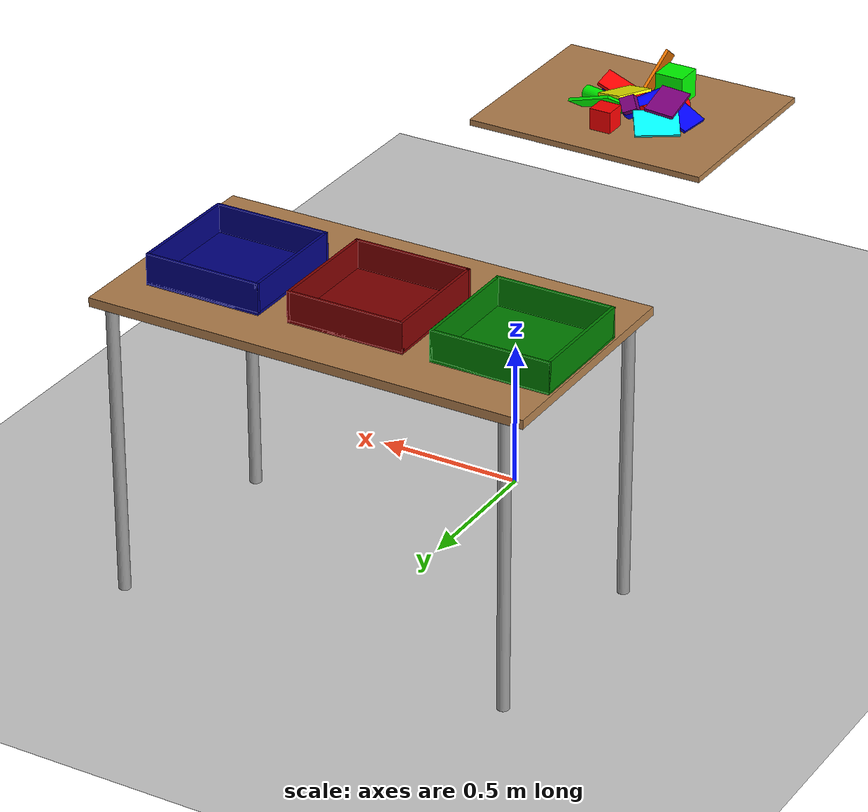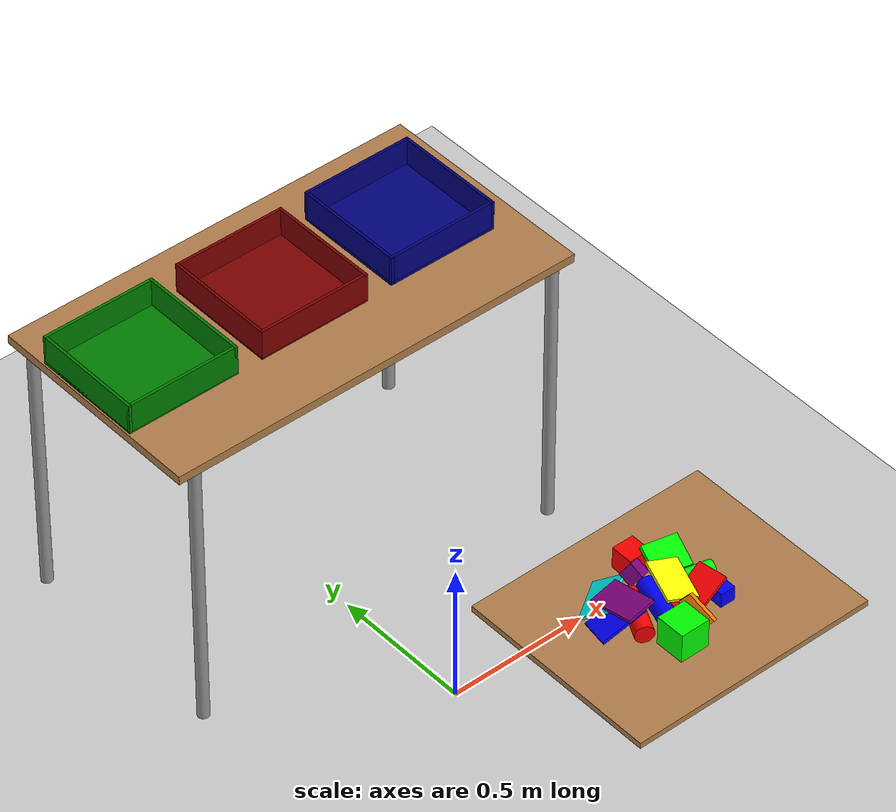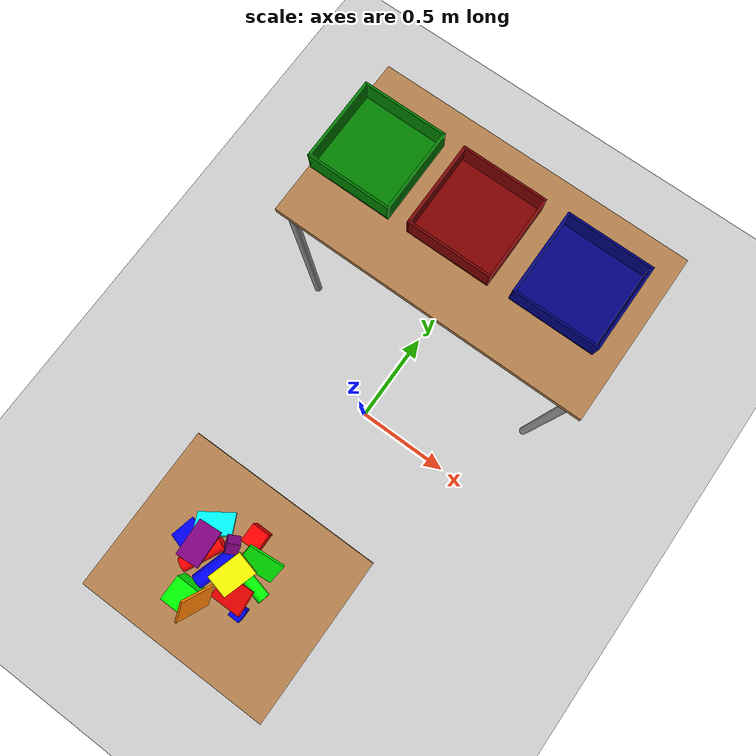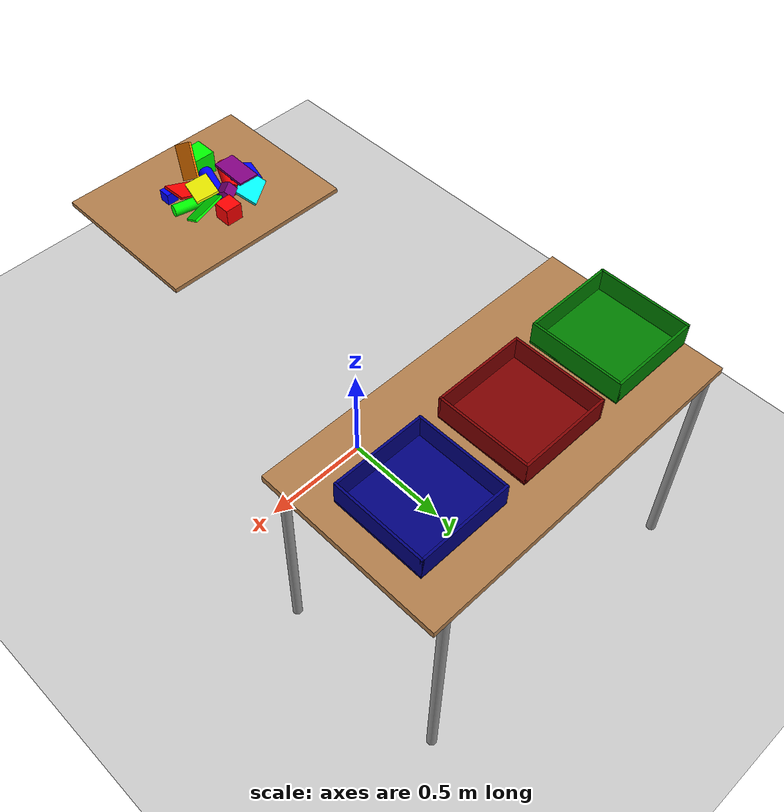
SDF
<sdf version="1.7">
 <world name="default">
  <light name="sun" type="directional">
   <pose>0 0 10 0 -0 0</pose>
   <diffuse>0.8 0.8 0.8 1</diffuse>
   <specular>0.2 0.2 0.2 1</specular>
   <attenuation>
    <range>1000</range>
    <constant>0.9</constant>
    <linear>0.01</linear>
    <quadratic>0.001</quadratic>
   </attenuation>
   <direction>-0.5 0.1 -0.9</direction>
   <spot><inner_angle>0</inner_angle><outer_angle>0</outer_angle><falloff>0</falloff></spot>
  </light>
  <model name="ground_plane">
   <static>1</static>
   <link name="link">
    <collision name="collision">
     <geometry><plane><normal>0 0 1</normal><size>100 100</size></plane></geometry>
     <surface><friction><ode><mu>100</mu><mu2>50</mu2></ode></friction></surface>
    </collision>
    <visual name="visual">
     <cast_shadows>0</cast_shadows>
     <geometry><plane><normal>0 0 1</normal><size>100 100</size></plane></geometry>
     <material>
      <script><uri>file://media/materials/scripts/gazebo.material</uri><name>Gazebo/Grey</name></script>
     </material>
    </visual>
   </link>
  </model>
  <gravity>0 0 -9.8</gravity>
  <magnetic_field>6e-06 2.3e-05 -4.2e-05</magnetic_field>
  <atmosphere type="adiabatic"/>
  <physics type="ode">
   <max_step_size>0.001</max_step_size>
   <real_time_factor>1</real_time_factor>
   <real_time_update_rate>1000</real_time_update_rate>
  </physics>
  <scene><ambient>0.4 0.4 0.4 1</ambient><background>0.7 0.7 0.7 1</background><shadows>1</shadows></scene>
  <audio><device>default</device></audio>
  <spherical_coordinates>
   <surface_model>EARTH_WGS84</surface_model>
   <latitude_deg>0</latitude_deg>
   <longitude_deg>0</longitude_deg>
   <elevation>0</elevation>
   <heading_deg>0</heading_deg>
  </spherical_coordinates>
  <model name="table">
   <static>1</static>
   <link name="link">
    <collision name="surface">
     <pose>0 0 1 0 -0 0</pose>
     <geometry><box><size>1.5 0.8 0.03</size></box></geometry>
     <surface>
      <friction><ode><mu>10</mu><mu2>5</mu2></ode></friction>
      <contact><ode><soft_cfm>0.0001</soft_cfm><soft_erp>0.4</soft_erp><kp>1e+06</kp><kd>10</kd></ode></contact>
     </surface>
    </collision>
    <visual name="visual1">
     <pose>0 0 1 0 -0 0</pose>
     <geometry><box><size>1.5 0.8 0.03</size></box></geometry>
     <material>
      <script><uri>file://media/materials/scripts/gazebo.material</uri><name>Gazebo/Wood</name></script>
     </material>
    </visual>
    <collision name="front_left_leg">
     <pose>0.68 0.38 0.5 0 -0 0</pose>
     <geometry><cylinder><radius>0.02</radius><length>1</length></cylinder></geometry>
    </collision>
    <visual name="front_left_leg">
     <pose>0.68 0.38 0.5 0 -0 0</pose>
     <geometry><cylinder><radius>0.02</radius><length>1</length></cylinder></geometry>
     <material>
      <script><uri>file://media/materials/scripts/gazebo.material</uri><name>Gazebo/Grey</name></script>
     </material>
    </visual>
    <collision name="front_right_leg">
     <pose>0.68 -0.38 0.5 0 -0 0</pose>
     <geometry><cylinder><radius>0.02</radius><length>1</length></cylinder></geometry>
    </collision>
    <visual name="front_right_leg">
     <pose>0.68 -0.38 0.5 0 -0 0</pose>
     <geometry><cylinder><radius>0.02</radius><length>1</length></cylinder></geometry>
     <material>
      <script><uri>file://media/materials/scripts/gazebo.material</uri><name>Gazebo/Grey</name></script>
     </material>
    </visual>
    <collision name="back_right_leg">
     <pose>-0.68 -0.38 0.5 0 -0 0</pose>
     <geometry><cylinder><radius>0.02</radius><length>1</length></cylinder></geometry>
    </collision>
    <visual name="back_right_leg">
     <pose>-0.68 -0.38 0.5 0 -0 0</pose>
     <geometry><cylinder><radius>0.02</radius><length>1</length></cylinder></geometry>
     <material>
      <script><uri>file://media/materials/scripts/gazebo.material</uri><name>Gazebo/Grey</name></script>
     </material>
    </visual>
    <collision name="back_left_leg">
     <pose>-0.68 0.38 0.5 0 -0 0</pose>
     <geometry><cylinder><radius>0.02</radius><length>1</length></cylinder></geometry>
    </collision>
    <visual name="back_left_leg">
     <pose>-0.68 0.38 0.5 0 -0 0</pose>
     <geometry><cylinder><radius>0.02</radius><length>1</length></cylinder></geometry>
     <material>
      <script><uri>file://media/materials/scripts/gazebo.material</uri><name>Gazebo/Grey</name></script>
     </material>
    </visual>
    <inertial>
     <inertia><ixx>1</ixx><ixy>0</ixy><ixz>0</ixz><iyy>1</iyy><iyz>0</iyz><izz>1</izz></inertia>
     <mass>50</mass>
    </inertial>
   </link>
   <pose>0.056083 0.801191 -1.2e-05 0 -0 2.5e-05</pose>
  </model>
  <plugin name="gazebo_link_attacher" filename="libgazebo_link_attacher.so"/>
  <plugin name="gazebo_ros_state" filename="libgazebo_ros_state.so">
   <namespace>/gazebo</namespace>
   <update_rate>100</update_rate>
  </plugin>
  <model name="cube_b">
   <link name="link_2">
    <inertial>
     <mass>2</mass>
     <inertia>
      <ixx>0.00083333</ixx>
      <ixy>0</ixy>
      <ixz>0</ixz>
      <iyy>0.00083333</iyy>
      <iyz>0</iyz>
      <izz>0.00083333</izz>
     </inertia>
    </inertial>
    <visual name="visual">
     <geometry><box><size>0.05 0.05 0.05</size></box></geometry>
     <material>
      <lighting>1</lighting>
      <script><uri>file://media/materials/scripts/gazebo.material</uri><name>Gazebo/Grey</name></script>
      <ambient>0 0 1 1</ambient>
      <diffuse>0 0 1 1</diffuse>
      <specular>0 0 0 1</specular>
      <emissive>0 0 0 1</emissive>
      <shader type="vertex"><normal_map>__default__</normal_map></shader>
     </material>
    </visual>
    <collision name="collision">
     <geometry><box><size>0.05 0.05 0.05</size></box></geometry>
     <surface>
      <friction>
       <ode><mu>0.8</mu><mu2>0.8</mu2><fdir1>0 0 0</fdir1><slip1>0</slip1><slip2>0</slip2></ode>
       <torsional>
        <coefficient>1</coefficient>
        <patch_radius>0</patch_radius>
        <surface_radius>0</surface_radius>
        <use_patch_radius>1</use_patch_radius>
        <ode><slip>0</slip></ode>
       </torsional>
      </friction>
      <bounce><restitution_coefficient>0</restitution_coefficient><threshold>1e+06</threshold></bounce>
      <contact>
       <collide_without_contact>0</collide_without_contact>
       <collide_without_contact_bitmask>1</collide_without_contact_bitmask>
       <collide_bitmask>1</collide_bitmask>
       <ode>
        <soft_cfm>0.0001</soft_cfm>
        <soft_erp>0.4</soft_erp>
        <kp>1e+06</kp>
        <kd>10</kd>
        <max_vel>0.01</max_vel>
        <min_depth>0</min_depth>
       </ode>
      </contact>
     </surface>
    </collision>
   </link>
   <static>0</static>
   <allow_auto_disable>0</allow_auto_disable>
   <pose>0.162821 -0.940427 1.01114 -1.56994 -0.004298 -0.017277</pose>
  </model>
  <model name="cube_g">
   <link name="link_2">
    <inertial>
     <mass>2</mass>
     <inertia>
      <ixx>0.00333333</ixx>
      <iyy>0.00333333</iyy>
      <izz>0.00333333</izz>
      <ixy>0</ixy>
      <ixz>0</ixz>
      <iyz>0</iyz>
     </inertia>
    </inertial>
    <visual name="visual">
     <geometry><box><size>0.1 0.1 0.1</size></box></geometry>
     <material>
      <lighting>1</lighting>
      <script><uri>file://media/materials/scripts/gazebo.material</uri><name>Gazebo/Grey</name></script>
      <ambient>0 1 0 1</ambient>
      <diffuse>0 1 0 1</diffuse>
      <specular>0 0 0 1</specular>
      <emissive>0 0 0 1</emissive>
      <shader type="vertex"><normal_map>__default__</normal_map></shader>
     </material>
    </visual>
    <collision name="collision">
     <geometry><box><size>0.1 0.1 0.1</size></box></geometry>
     <surface>
      <friction>
       <ode><mu>0.8</mu><mu2>0.8</mu2><fdir1>0 0 0</fdir1><slip1>0</slip1><slip2>0</slip2></ode>
       <torsional>
        <coefficient>1</coefficient>
        <patch_radius>0</patch_radius>
        <surface_radius>0</surface_radius>
        <use_patch_radius>1</use_patch_radius>
        <ode><slip>0</slip></ode>
       </torsional>
      </friction>
      <bounce><restitution_coefficient>0</restitution_coefficient><threshold>1e+06</threshold></bounce>
      <contact>
       <collide_without_contact>0</collide_without_contact>
       <collide_without_contact_bitmask>1</collide_without_contact_bitmask>
       <collide_bitmask>1</collide_bitmask>
       <ode>
        <soft_cfm>0.0001</soft_cfm>
        <soft_erp>0.4</soft_erp>
        <kp>1e+06</kp>
        <kd>10</kd>
        <max_vel>0.01</max_vel>
        <min_depth>0</min_depth>
       </ode>
      </contact>
     </surface>
    </collision>
   </link>
   <static>0</static>
   <allow_auto_disable>0</allow_auto_disable>
   <pose>-0.041064 -1.00225 1.03524 0.001158 -0.004161 -0.002031</pose>
  </model>
  <model name="cube_r">
   <link name="link_2">
    <inertial>
     <mass>2</mass>
     <inertia>
      <ixx>0.001875</ixx>
      <ixy>0</ixy>
      <ixz>0</ixz>
      <iyy>0.001875</iyy>
      <iyz>0</iyz>
      <izz>0.001875</izz>
     </inertia>
    </inertial>
    <visual name="visual">
     <geometry><box><size>0.075 0.075 0.075</size></box></geometry>
     <material>
      <lighting>1</lighting>
      <script><uri>file://media/materials/scripts/gazebo.material</uri><name>Gazebo/Grey</name></script>
      <ambient>1 0 0 1</ambient>
      <diffuse>1 0 0 1</diffuse>
      <specular>0 0 0 1</specular>
      <emissive>0 0 0 1</emissive>
      <shader type="vertex"><normal_map>__default__</normal_map></shader>
     </material>
    </visual>
    <collision name="collision">
     <geometry><box><size>0.075 0.075 0.075</size></box></geometry>
     <surface>
      <friction>
       <ode><mu>0.8</mu><mu2>0.8</mu2><fdir1>0 0 0</fdir1><slip1>0</slip1><slip2>0</slip2></ode>
       <torsional>
        <coefficient>1</coefficient>
        <patch_radius>0</patch_radius>
        <surface_radius>0</surface_radius>
        <use_patch_radius>1</use_patch_radius>
        <ode><slip>0</slip></ode>
       </torsional>
      </friction>
      <bounce><restitution_coefficient>0</restitution_coefficient><threshold>1e+06</threshold></bounce>
      <contact>
       <collide_without_contact>0</collide_without_contact>
       <collide_without_contact_bitmask>1</collide_without_contact_bitmask>
       <collide_bitmask>1</collide_bitmask>
       <ode>
        <soft_cfm>0.0001</soft_cfm>
        <soft_erp>0.4</soft_erp>
        <kp>1e+06</kp>
        <kd>10</kd>
        <max_vel>0.01</max_vel>
        <min_depth>0</min_depth>
       </ode>
      </contact>
     </surface>
    </collision>
   </link>
   <static>0</static>
   <allow_auto_disable>0</allow_auto_disable>
   <pose>0.05349 -0.684874 1.02348 1.56688 -0.001202 1.56636</pose>
  </model>
  <model name="cylinder_r">
   <link name="link_0">
    <inertial>
     <mass>0.2</mass>
     <inertia>
      <ixx>0.0005267</ixx>
      <ixy>0</ixy>
      <ixz>0</ixz>
      <iyy>0.0005267</iyy>
      <iyz>0</iyz>
      <izz>9e-05</izz>
     </inertia>
    </inertial>
    <visual name="visual">
     <geometry><cylinder><radius>0.03</radius><length>0.17</length></cylinder></geometry>
     <material>
      <lighting>1</lighting>
      <script><uri>file://media/materials/scripts/gazebo.material</uri><name>Gazebo/Grey</name></script>
      <ambient>1 0 0 1</ambient>
      <diffuse>1 0 0 1</diffuse>
      <specular>0 0 0 1</specular>
      <emissive>0 0 0 1</emissive>
      <shader type="vertex"><normal_map>__default__</normal_map></shader>
     </material>
    </visual>
    <collision name="collision">
     <geometry><cylinder><radius>0.03</radius><length>0.17</length></cylinder></geometry>
     <surface>
      <friction>
       <ode><mu>0.5</mu><mu2>0.5</mu2><fdir1>0 0 0</fdir1><slip1>0</slip1><slip2>0</slip2></ode>
       <torsional>
        <coefficient>1</coefficient>
        <patch_radius>0</patch_radius>
        <surface_radius>0</surface_radius>
        <use_patch_radius>1</use_patch_radius>
        <ode><slip>0</slip></ode>
       </torsional>
      </friction>
      <bounce><restitution_coefficient>0</restitution_coefficient><threshold>1e+06</threshold></bounce>
      <contact>
       <collide_without_contact>0</collide_without_contact>
       <collide_without_contact_bitmask>1</collide_without_contact_bitmask>
       <collide_bitmask>1</collide_bitmask>
       <ode>
        <soft_cfm>0.0001</soft_cfm>
        <soft_erp>0.4</soft_erp>
        <kp>1e+06</kp>
        <kd>10</kd>
        <max_vel>0.01</max_vel>
        <min_depth>0</min_depth>
       </ode>
      </contact>
     </surface>
    </collision>
   </link>
   <static>0</static>
   <allow_auto_disable>0</allow_auto_disable>
   <pose>-0.077898 -0.852741 1.01517 -1.57387 0.526248 2.6795</pose>
  </model>
  <model name="cylinder_b">
   <link name="link_0">
    <inertial>
     <mass>0.2</mass>
     <inertia>
      <ixx>0.0005267</ixx>
      <ixy>0</ixy>
      <ixz>0</ixz>
      <iyy>0.0005267</iyy>
      <iyz>0</iyz>
      <izz>9e-05</izz>
     </inertia>
    </inertial>
    <visual name="visual">
     <geometry><cylinder><radius>0.03</radius><length>0.17</length></cylinder></geometry>
     <material>
      <lighting>1</lighting>
      <ambient>0 0 1 1</ambient>
      <diffuse>0 0 1 1</diffuse>
      <specular>0.1 0.1 0.1 1</specular>
      <emissive>0 0 0 1</emissive>
      <shader type="vertex"><normal_map>__default__</normal_map></shader>
     </material>
    </visual>
    <collision name="collision">
     <geometry><cylinder><radius>0.03</radius><length>0.17</length></cylinder></geometry>
     <surface>
      <friction>
       <ode><mu>0.4</mu><mu2>0.4</mu2><fdir1>0 0 0</fdir1><slip1>0</slip1><slip2>0</slip2></ode>
       <torsional>
        <coefficient>1</coefficient>
        <patch_radius>0</patch_radius>
        <surface_radius>0</surface_radius>
        <use_patch_radius>1</use_patch_radius>
        <ode><slip>0</slip></ode>
       </torsional>
      </friction>
      <bounce><restitution_coefficient>0</restitution_coefficient><threshold>1e+06</threshold></bounce>
      <contact>
       <collide_without_contact>0</collide_without_contact>
       <collide_without_contact_bitmask>1</collide_without_contact_bitmask>
       <collide_bitmask>1</collide_bitmask>
       <ode>
        <soft_cfm>0.0001</soft_cfm>
        <soft_erp>0.4</soft_erp>
        <kp>1e+06</kp>
        <kd>10</kd>
        <max_vel>0.01</max_vel>
        <min_depth>0</min_depth>
       </ode>
      </contact>
     </surface>
    </collision>
   </link>
   <static>0</static>
   <allow_auto_disable>0</allow_auto_disable>
   <pose>-0.004701 -0.862227 1.01554 -1.57426 -0.880737 2.83783</pose>
  </model>
  <model name="cylinder_g">
   <link name="link_0">
    <inertial>
     <mass>0.2</mass>
     <inertia>
      <ixx>0.0005129</ixx>
      <ixy>0</ixy>
      <ixz>0</ixz>
      <iyy>0.0005129</iyy>
      <iyz>0</iyz>
      <izz>6.25e-05</izz>
     </inertia>
    </inertial>
    <visual name="visual">
     <geometry><cylinder><radius>0.025</radius><length>0.17</length></cylinder></geometry>
     <material>
      <lighting>1</lighting>
      <ambient>0 1 0 1</ambient>
      <diffuse>0 1 0 1</diffuse>
      <specular>0.1 0.1 0.1 1</specular>
      <emissive>0 0 0 1</emissive>
      <shader type="vertex"><normal_map>__default__</normal_map></shader>
     </material>
    </visual>
    <collision name="collision">
     <geometry><cylinder><radius>0.025</radius><length>0.17</length></cylinder></geometry>
     <surface>
      <friction>
       <ode><mu>0.5</mu><mu2>0.5</mu2><fdir1>0 0 0</fdir1><slip1>0</slip1><slip2>0</slip2></ode>
       <torsional>
        <coefficient>1</coefficient>
        <patch_radius>0</patch_radius>
        <surface_radius>0</surface_radius>
        <use_patch_radius>1</use_patch_radius>
        <ode><slip>0</slip></ode>
       </torsional>
      </friction>
      <bounce><restitution_coefficient>0</restitution_coefficient><threshold>1e+06</threshold></bounce>
      <contact>
       <collide_without_contact>0</collide_without_contact>
       <collide_without_contact_bitmask>1</collide_without_contact_bitmask>
       <collide_bitmask>1</collide_bitmask>
       <ode>
        <soft_cfm>0.0001</soft_cfm>
        <soft_erp>0.4</soft_erp>
        <kp>1e+06</kp>
        <kd>10</kd>
        <max_vel>0.01</max_vel>
        <min_depth>0</min_depth>
       </ode>
      </contact>
     </surface>
    </collision>
   </link>
   <static>0</static>
   <allow_auto_disable>0</allow_auto_disable>
   <pose>0.12767 -0.830181 1.01113 -1.49637 -1.51974 -1.8676</pose>
  </model>
  <model name="cuboid_r">
   <link name="link">
    <inertial>
     <mass>2</mass>
     <inertia>
      <ixx>0.001683</ixx>
      <iyy>0.003767</iyy>
      <izz>0.005417</izz>
      <ixy>0</ixy>
      <ixz>0</ixz>
      <iyz>0</iyz>
     </inertia>
    </inertial>
    <visual name="visual">
     <geometry><box><size>0.15 0.1 0.01</size></box></geometry>
     <material><ambient>1 0 0 1</ambient><diffuse>1 0 0 1</diffuse><specular>0.1 0.1 0.1 1</specular></material>
    </visual>
    <collision name="collision">
     <geometry><box><size>0.15 0.1 0.01</size></box></geometry>
     <surface>
      <friction>
       <ode><mu>0.6</mu><mu2>0.6</mu2><fdir1>0 0 0</fdir1><slip1>0</slip1><slip2>0</slip2></ode>
       <torsional>
        <coefficient>1</coefficient>
        <patch_radius>0</patch_radius>
        <surface_radius>0</surface_radius>
        <use_patch_radius>1</use_patch_radius>
        <ode><slip>0</slip></ode>
       </torsional>
      </friction>
      <bounce><restitution_coefficient>0</restitution_coefficient><threshold>1e+06</threshold></bounce>
      <contact>
       <collide_without_contact>0</collide_without_contact>
       <collide_without_contact_bitmask>1</collide_without_contact_bitmask>
       <collide_bitmask>1</collide_bitmask>
       <ode>
        <soft_cfm>0.0001</soft_cfm>
        <soft_erp>0.4</soft_erp>
        <kp>1e+06</kp>
        <kd>10</kd>
        <max_vel>0.01</max_vel>
        <min_depth>0</min_depth>
       </ode>
      </contact>
     </surface>
    </collision>
   </link>
   <static>0</static>
   <allow_auto_disable>0</allow_auto_disable>
   <pose>0.105136 -0.900726 1.02544 0.069121 0.442315 -3.01892</pose>
  </model>
  <model name="cuboid_g">
   <link name="link">
    <inertial>
     <mass>2</mass>
     <inertia>
      <ixx>0.001683</ixx>
      <iyy>0.003767</iyy>
      <izz>0.005417</izz>
      <ixy>0</ixy>
      <ixz>0</ixz>
      <iyz>0</iyz>
     </inertia>
    </inertial>
    <visual name="visual">
     <geometry><box><size>0.15 0.1 0.01</size></box></geometry>
     <material><ambient>0 1 0 1</ambient><diffuse>0 1 0 1</diffuse><specular>0.1 0.1 0.1 1</specular></material>
    </visual>
    <collision name="collision">
     <geometry><box><size>0.15 0.1 0.01</size></box></geometry>
     <surface>
      <friction>
       <ode><mu>0.6</mu><mu2>0.6</mu2><fdir1>0 0 0</fdir1><slip1>0</slip1><slip2>0</slip2></ode>
       <torsional>
        <coefficient>1</coefficient>
        <patch_radius>0</patch_radius>
        <surface_radius>0</surface_radius>
        <use_patch_radius>1</use_patch_radius>
        <ode><slip>0</slip></ode>
       </torsional>
      </friction>
      <bounce><restitution_coefficient>0</restitution_coefficient><threshold>1e+06</threshold></bounce>
      <contact>
       <collide_without_contact>0</collide_without_contact>
       <collide_without_contact_bitmask>1</collide_without_contact_bitmask>
       <collide_bitmask>1</collide_bitmask>
       <ode>
        <soft_cfm>0.0001</soft_cfm>
        <soft_erp>0.4</soft_erp>
        <kp>1e+06</kp>
        <kd>10</kd>
        <max_vel>0.01</max_vel>
        <min_depth>0</min_depth>
       </ode>
      </contact>
     </surface>
    </collision>
   </link>
   <static>0</static>
   <allow_auto_disable>0</allow_auto_disable>
   <pose>0.125244 -0.750354 1.03758 -0.585599 -0.277705 -3.09777</pose>
  </model>
  <model name="cuboid_b">
   <link name="link">
    <inertial>
     <mass>2</mass>
     <inertia>
      <ixx>0.001683</ixx>
      <iyy>0.003767</iyy>
      <izz>0.005417</izz>
      <ixy>0</ixy>
      <ixz>0</ixz>
      <iyz>0</iyz>
     </inertia>
    </inertial>
    <visual name="visual">
     <geometry><box><size>0.15 0.1 0.01</size></box></geometry>
     <material><ambient>0 0 1 1</ambient><diffuse>0 0 1 1</diffuse><specular>0.1 0.1 0.1 1</specular></material>
    </visual>
    <collision name="collision">
     <geometry><box><size>0.15 0.1 0.01</size></box></geometry>
     <surface>
      <friction>
       <ode><mu>0.6</mu><mu2>0.6</mu2><fdir1>0 0 0</fdir1><slip1>0</slip1><slip2>0</slip2></ode>
       <torsional>
        <coefficient>1</coefficient>
        <patch_radius>0</patch_radius>
        <surface_radius>0</surface_radius>
        <use_patch_radius>1</use_patch_radius>
        <ode><slip>0</slip></ode>
       </torsional>
      </friction>
      <bounce><restitution_coefficient>0</restitution_coefficient><threshold>1e+06</threshold></bounce>
      <contact>
       <collide_without_contact>0</collide_without_contact>
       <collide_without_contact_bitmask>1</collide_without_contact_bitmask>
       <collide_bitmask>1</collide_bitmask>
       <ode>
        <soft_cfm>0.0001</soft_cfm>
        <soft_erp>0.4</soft_erp>
        <kp>1e+06</kp>
        <kd>10</kd>
        <max_vel>0.01</max_vel>
        <min_depth>0</min_depth>
       </ode>
      </contact>
     </surface>
    </collision>
   </link>
   <static>0</static>
   <allow_auto_disable>0</allow_auto_disable>
   <pose>-0.138036 -0.833348 1.025 0.119452 0.413932 2.97093</pose>
  </model>
  <model name="cuboid_purple">
   <link name="link">
    <inertial>
     <mass>2</mass>
     <inertia>
      <ixx>0.001683</ixx>
      <iyy>0.003767</iyy>
      <izz>0.005417</izz>
      <ixy>0</ixy>
      <ixz>0</ixz>
      <iyz>0</iyz>
     </inertia>
    </inertial>
    <visual name="visual">
     <geometry><box><size>0.15 0.1 0.01</size></box></geometry>
     <material>
      <ambient>0.5 0 0.5 1</ambient>
      <diffuse>0.5 0 0.5 1</diffuse>
      <specular>0.1 0.1 0.1 1</specular>
     </material>
    </visual>
    <collision name="collision">
     <geometry><box><size>0.15 0.1 0.01</size></box></geometry>
     <surface>
      <friction>
       <ode><mu>0.6</mu><mu2>0.6</mu2><fdir1>0 0 0</fdir1><slip1>0</slip1><slip2>0</slip2></ode>
       <torsional>
        <coefficient>1</coefficient>
        <patch_radius>0</patch_radius>
        <surface_radius>0</surface_radius>
        <use_patch_radius>1</use_patch_radius>
        <ode><slip>0</slip></ode>
       </torsional>
      </friction>
      <bounce><restitution_coefficient>0</restitution_coefficient><threshold>1e+06</threshold></bounce>
      <contact>
       <collide_without_contact>0</collide_without_contact>
       <collide_without_contact_bitmask>1</collide_without_contact_bitmask>
       <collide_bitmask>1</collide_bitmask>
       <ode>
        <soft_cfm>0.0001</soft_cfm>
        <soft_erp>0.4</soft_erp>
        <kp>1e+06</kp>
        <kd>10</kd>
        <max_vel>0.01</max_vel>
        <min_depth>0</min_depth>
       </ode>
      </contact>
     </surface>
    </collision>
   </link>
   <static>0</static>
   <allow_auto_disable>0</allow_auto_disable>
   <pose>-0.103799 -0.822705 1.05761 -0.118132 0.149379 1.64207</pose>
  </model>
  <model name="cuboid_orange">
   <link name="link">
    <inertial>
     <mass>2</mass>
     <inertia>
      <ixx>0.001683</ixx>
      <iyy>0.003767</iyy>
      <izz>0.005417</izz>
      <ixy>0</ixy>
      <ixz>0</ixz>
      <iyz>0</iyz>
     </inertia>
    </inertial>
    <visual name="visual">
     <geometry><box><size>0.15 0.1 0.01</size></box></geometry>
     <material>
      <ambient>1 0.5 0 1</ambient>
      <diffuse>1 0.5 0 1</diffuse>
      <specular>0.1 0.1 0.1 1</specular>
     </material>
    </visual>
    <collision name="collision">
     <geometry><box><size>0.15 0.1 0.01</size></box></geometry>
     <surface>
      <friction>
       <ode><mu>0.6</mu><mu2>0.6</mu2><fdir1>0 0 0</fdir1><slip1>0</slip1><slip2>0</slip2></ode>
       <torsional>
        <coefficient>1</coefficient>
        <patch_radius>0</patch_radius>
        <surface_radius>0</surface_radius>
        <use_patch_radius>1</use_patch_radius>
        <ode><slip>0</slip></ode>
       </torsional>
      </friction>
      <bounce><restitution_coefficient>0</restitution_coefficient><threshold>1e+06</threshold></bounce>
      <contact>
       <collide_without_contact>0</collide_without_contact>
       <collide_without_contact_bitmask>1</collide_without_contact_bitmask>
       <collide_bitmask>1</collide_bitmask>
       <ode>
        <soft_cfm>0.0001</soft_cfm>
        <soft_erp>0.4</soft_erp>
        <kp>1e+06</kp>
        <kd>10</kd>
        <max_vel>0.01</max_vel>
        <min_depth>0</min_depth>
       </ode>
      </contact>
     </surface>
    </collision>
   </link>
   <static>0</static>
   <allow_auto_disable>0</allow_auto_disable>
   <pose>0.018504 -0.994597 1.07242 -2.11229 0.888247 1.13172</pose>
  </model>
  <model name="cuboid_yellow">
   <link name="link">
    <inertial>
     <mass>2</mass>
     <inertia>
      <ixx>0.001683</ixx>
      <iyy>0.003767</iyy>
      <izz>0.005417</izz>
      <ixy>0</ixy>
      <ixz>0</ixz>
      <iyz>0</iyz>
     </inertia>
    </inertial>
    <visual name="visual">
     <geometry><box><size>0.15 0.1 0.01</size></box></geometry>
     <material><ambient>1 1 0 1</ambient><diffuse>1 1 0 1</diffuse><specular>0.1 0.1 0.1 1</specular></material>
    </visual>
    <collision name="collision">
     <geometry><box><size>0.15 0.1 0.01</size></box></geometry>
     <surface>
      <friction>
       <ode><mu>0.6</mu><mu2>0.6</mu2><fdir1>0 0 0</fdir1><slip1>0</slip1><slip2>0</slip2></ode>
       <torsional>
        <coefficient>1</coefficient>
        <patch_radius>0</patch_radius>
        <surface_radius>0</surface_radius>
        <use_patch_radius>1</use_patch_radius>
        <ode><slip>0</slip></ode>
       </torsional>
      </friction>
      <bounce><restitution_coefficient>0</restitution_coefficient><threshold>1e+06</threshold></bounce>
      <contact>
       <collide_without_contact>0</collide_without_contact>
       <collide_without_contact_bitmask>1</collide_without_contact_bitmask>
       <collide_bitmask>1</collide_bitmask>
       <ode>
        <soft_cfm>0.0001</soft_cfm>
        <soft_erp>0.4</soft_erp>
        <kp>1e+06</kp>
        <kd>10</kd>
        <max_vel>0.01</max_vel>
        <min_depth>0</min_depth>
       </ode>
      </contact>
     </surface>
    </collision>
   </link>
   <static>0</static>
   <allow_auto_disable>0</allow_auto_disable>
   <pose>0.064848 -0.841309 1.04797 -2.93539 -0.12722 1.26332</pose>
  </model>
  <model name="cuboid_cyan">
   <link name="link">
    <inertial>
     <mass>2</mass>
     <inertia>
      <ixx>0.001683</ixx>
      <iyy>0.003767</iyy>
      <izz>0.005417</izz>
      <ixy>0</ixy>
      <ixz>0</ixz>
      <iyz>0</iyz>
     </inertia>
    </inertial>
    <visual name="visual">
     <geometry><box><size>0.15 0.1 0.01</size></box></geometry>
     <material><ambient>0 1 1 1</ambient><diffuse>0 1 1 1</diffuse><specular>0.1 0.1 0.1 1</specular></material>
    </visual>
    <collision name="collision">
     <geometry><box><size>0.15 0.1 0.01</size></box></geometry>
     <surface>
      <friction>
       <ode><mu>0.6</mu><mu2>0.6</mu2><fdir1>0 0 0</fdir1><slip1>0</slip1><slip2>0</slip2></ode>
       <torsional>
        <coefficient>1</coefficient>
        <patch_radius>0</patch_radius>
        <surface_radius>0</surface_radius>
        <use_patch_radius>1</use_patch_radius>
        <ode><slip>0</slip></ode>
       </torsional>
      </friction>
      <bounce><restitution_coefficient>0</restitution_coefficient><threshold>1e+06</threshold></bounce>
      <contact>
       <collide_without_contact>0</collide_without_contact>
       <collide_without_contact_bitmask>1</collide_without_contact_bitmask>
       <collide_bitmask>1</collide_bitmask>
       <ode>
        <soft_cfm>0.0001</soft_cfm>
        <soft_erp>0.4</soft_erp>
        <kp>1e+06</kp>
        <kd>10</kd>
        <max_vel>0.01</max_vel>
        <min_depth>0</min_depth>
       </ode>
      </contact>
     </surface>
    </collision>
   </link>
   <static>0</static>
   <allow_auto_disable>0</allow_auto_disable>
   <pose>-0.107414 -0.740894 1.01564 2.59015 -0.003854 0.582895</pose>
  </model>
  <model name="workspace">
   <link name="link">
    <inertial>
     <mass>100</mass>
     <inertia><ixx>6.02417</ixx><ixy>0</ixy><ixz>0</ixz><iyy>4.08667</iyy><iyz>0</iyz><izz>10.1042</izz></inertia>
    </inertial>
    <visual name="visual">
     <geometry><box><size>0.7 0.85 0.02</size></box></geometry>
     <material>
      <script><name>Gazebo/Wood</name><uri>file://media/materials/scripts/gazebo.material</uri></script>
      <shader type="pixel"/>
     </material>
    </visual>
    <collision name="collision">
     <geometry><box><size>0.7 0.85 0.02</size></box></geometry>
     <surface>
      <friction>
       <ode><mu>100</mu><mu2>50</mu2><fdir1>0 0 0</fdir1><slip1>0</slip1><slip2>0</slip2></ode>
       <torsional>
        <coefficient>1</coefficient>
        <patch_radius>0</patch_radius>
        <surface_radius>0</surface_radius>
        <use_patch_radius>1</use_patch_radius>
        <ode><slip>0</slip></ode>
       </torsional>
      </friction>
      <bounce><restitution_coefficient>0</restitution_coefficient><threshold>1e+06</threshold></bounce>
      <contact>
       <collide_without_contact>0</collide_without_contact>
       <collide_without_contact_bitmask>1</collide_without_contact_bitmask>
       <collide_bitmask>1</collide_bitmask>
       <ode>
        <soft_cfm>0.0001</soft_cfm>
        <soft_erp>0.2</soft_erp>
        <kp>1e+13</kp>
        <kd>10</kd>
        <max_vel>0.01</max_vel>
        <min_depth>0</min_depth>
       </ode>
       <bullet>
        <split_impulse>1</split_impulse>
        <split_impulse_penetration_threshold>-0.01</split_impulse_penetration_threshold>
        <soft_cfm>0</soft_cfm>
        <soft_erp>0.2</soft_erp>
        <kp>1e+13</kp>
        <kd>1</kd>
       </bullet>
      </contact>
     </surface>
    </collision>
   </link>
   <static>1</static>
   <pose>0.0416 -0.859914 0.975746 -0.004154 -0.001127 1.57039</pose>
  </model>
  <model name="tray_red">
   <static>1</static>
   <link name="link">
    <collision name="base_collision">
     <pose>0 0 0.01 0 -0 0</pose>
     <geometry><box><size>0.4 0.4 0.01</size></box></geometry>
     <surface><contact><ode><mu>50</mu><mu2>50</mu2></ode></contact></surface>
    </collision>
    <visual name="base_visual">
     <pose>0 0 0.01 0 -0 0</pose>
     <geometry><box><size>0.4 0.4 0.01</size></box></geometry>
     <material>
      <ambient>1 0 0 1</ambient>
      <diffuse>0.5 0 0 1</diffuse>
      <specular>0 0 0 1</specular>
      <emissive>0 0 0 1</emissive>
      <shininess>100</shininess>
     </material>
    </visual>
    <collision name="front_collision">
     <pose>0 0.195 0.06 0 -0 0</pose>
     <geometry><box><size>0.4 0.01 0.1</size></box></geometry>
    </collision>
    <visual name="front_visual">
     <pose>0 0.195 0.06 0 -0 0</pose>
     <geometry><box><size>0.4 0.01 0.1</size></box></geometry>
     <material>
      <ambient>1 0 0 1</ambient>
      <diffuse>0.5 0 0 1</diffuse>
      <specular>0 0 0 1</specular>
      <emissive>0 0 0 1</emissive>
     </material>
    </visual>
    <collision name="back_collision">
     <pose>0 -0.195 0.06 0 -0 0</pose>
     <geometry><box><size>0.4 0.01 0.1</size></box></geometry>
    </collision>
    <visual name="back_visual">
     <pose>0 -0.195 0.06 0 -0 0</pose>
     <geometry><box><size>0.4 0.01 0.1</size></box></geometry>
     <material>
      <ambient>1 0 0 1</ambient>
      <diffuse>0.5 0 0 1</diffuse>
      <specular>0 0 0 1</specular>
      <emissive>0 0 0 1</emissive>
     </material>
    </visual>
    <collision name="left_collision">
     <pose>0.195 0 0.06 0 -0 0</pose>
     <geometry><box><size>0.01 0.4 0.1</size></box></geometry>
    </collision>
    <visual name="left_visual">
     <pose>0.195 0 0.06 0 -0 0</pose>
     <geometry><box><size>0.01 0.4 0.1</size></box></geometry>
     <material>
      <ambient>1 0 0 1</ambient>
      <diffuse>0.5 0 0 1</diffuse>
      <specular>0 0 0 1</specular>
      <emissive>0 0 0 1</emissive>
     </material>
    </visual>
    <collision name="right_collision">
     <pose>-0.195 0 0.06 0 -0 0</pose>
     <geometry><box><size>0.01 0.4 0.1</size></box></geometry>
    </collision>
    <visual name="right_visual">
     <pose>-0.195 0 0.06 0 -0 0</pose>
     <geometry><box><size>0.01 0.4 0.1</size></box></geometry>
     <material>
      <ambient>1 0 0 1</ambient>
      <diffuse>0.5 0 0 1</diffuse>
      <specular>0 0 0 1</specular>
      <emissive>0 0 0 1</emissive>
     </material>
    </visual>
    <inertial>
     <inertia><ixx>1</ixx><ixy>0</ixy><ixz>0</ixz><iyy>1</iyy><iyz>0</iyz><izz>1</izz></inertia>
     <mass>1</mass>
    </inertial>
   </link>
   <pose>0.003367 0.836815 1.00999 0 -0 0</pose>
  </model>
  <model name="tray_green">
   <static>1</static>
   <link name="link">
    <collision name="base_collision">
     <pose>0 0 0.01 0 -0 0</pose>
     <geometry><box><size>0.4 0.4 0.01</size></box></geometry>
     <surface><contact><ode><mu>50</mu><mu2>50</mu2></ode></contact></surface>
    </collision>
    <visual name="base_visual">
     <pose>0 0 0.01 0 -0 0</pose>
     <geometry><box><size>0.4 0.4 0.01</size></box></geometry>
     <material><ambient>0 1 0 1</ambient><diffuse>0 0.5 0 1</diffuse></material>
    </visual>
    <collision name="front_collision">
     <pose>0 0.195 0.06 0 -0 0</pose>
     <geometry><box><size>0.4 0.01 0.1</size></box></geometry>
    </collision>
    <visual name="front_visual">
     <pose>0 0.195 0.06 0 -0 0</pose>
     <geometry><box><size>0.4 0.01 0.1</size></box></geometry>
     <material><ambient>0 1 0 1</ambient><diffuse>0 0.5 0 1</diffuse></material>
    </visual>
    <collision name="back_collision">
     <pose>0 -0.195 0.06 0 -0 0</pose>
     <geometry><box><size>0.4 0.01 0.1</size></box></geometry>
    </collision>
    <visual name="back_visual">
     <pose>0 -0.195 0.06 0 -0 0</pose>
     <geometry><box><size>0.4 0.01 0.1</size></box></geometry>
     <material><ambient>0 1 0 1</ambient><diffuse>0 0.5 0 1</diffuse></material>
    </visual>
    <collision name="left_collision">
     <pose>0.195 0 0.06 0 -0 0</pose>
     <geometry><box><size>0.01 0.4 0.1</size></box></geometry>
    </collision>
    <visual name="left_visual">
     <pose>0.195 0 0.06 0 -0 0</pose>
     <geometry><box><size>0.01 0.4 0.1</size></box></geometry>
     <material><ambient>0 1 0 1</ambient><diffuse>0 0.5 0 1</diffuse></material>
    </visual>
    <collision name="right_collision">
     <pose>-0.195 0 0.06 0 -0 0</pose>
     <geometry><box><size>0.01 0.4 0.1</size></box></geometry>
    </collision>
    <visual name="right_visual">
     <pose>-0.195 0 0.06 0 -0 0</pose>
     <geometry><box><size>0.01 0.4 0.1</size></box></geometry>
     <material><ambient>0 1 0 1</ambient><diffuse>0 0.5 0 1</diffuse></material>
    </visual>
    <inertial>
     <inertia><ixx>1</ixx><ixy>0</ixy><ixz>0</ixz><iyy>1</iyy><iyz>0</iyz><izz>1</izz></inertia>
     <mass>1</mass>
    </inertial>
   </link>
   <pose>-0.487214 0.834657 1.00999 0 -0 0</pose>
  </model>
  <model name="tray_blue">
   <static>1</static>
   <link name="link">
    <collision name="base_collision">
     <pose>0 0 0.01 0 -0 0</pose>
     <geometry><box><size>0.4 0.4 0.01</size></box></geometry>
     <surface><contact><ode><mu>50</mu><mu2>50</mu2></ode></contact></surface>
    </collision>
    <visual name="base_visual">
     <pose>0 0 0.01 0 -0 0</pose>
     <geometry><box><size>0.4 0.4 0.01</size></box></geometry>
     <material><ambient>0 0 1 1</ambient><diffuse>0 0 0.5 1</diffuse></material>
    </visual>
    <collision name="front_collision">
     <pose>0 0.195 0.06 0 -0 0</pose>
     <geometry><box><size>0.4 0.01 0.1</size></box></geometry>
    </collision>
    <visual name="front_visual">
     <pose>0 0.195 0.06 0 -0 0</pose>
     <geometry><box><size>0.4 0.01 0.1</size></box></geometry>
     <material><ambient>0 0 1 1</ambient><diffuse>0 0 0.5 1</diffuse></material>
    </visual>
    <collision name="back_collision">
     <pose>0 -0.195 0.06 0 -0 0</pose>
     <geometry><box><size>0.4 0.01 0.1</size></box></geometry>
    </collision>
    <visual name="back_visual">
     <pose>0 -0.195 0.06 0 -0 0</pose>
     <geometry><box><size>0.4 0.01 0.1</size></box></geometry>
     <material><ambient>0 0 1 1</ambient><diffuse>0 0 0.5 1</diffuse></material>
    </visual>
    <collision name="left_collision">
     <pose>0.195 0 0.06 0 -0 0</pose>
     <geometry><box><size>0.01 0.4 0.1</size></box></geometry>
    </collision>
    <visual name="left_visual">
     <pose>0.195 0 0.06 0 -0 0</pose>
     <geometry><box><size>0.01 0.4 0.1</size></box></geometry>
     <material><ambient>0 0 1 1</ambient><diffuse>0 0 0.5 1</diffuse></material>
    </visual>
    <collision name="right_collision">
     <pose>-0.195 0 0.06 0 -0 0</pose>
     <geometry><box><size>0.01 0.4 0.1</size></box></geometry>
    </collision>
    <visual name="right_visual">
     <pose>-0.195 0 0.06 0 -0 0</pose>
     <geometry><box><size>0.01 0.4 0.1</size></box></geometry>
     <material><ambient>0 0 1 1</ambient><diffuse>0 0 0.5 1</diffuse></material>
    </visual>
    <inertial>
     <inertia><ixx>1</ixx><ixy>0</ixy><ixz>0</ixz><iyy>1</iyy><iyz>0</iyz><izz>1</izz></inertia>
     <mass>1</mass>
    </inertial>
   </link>
   <pose>0.500589 0.844197 1.00999 0 -0 0</pose>
  </model>
  <model name="cube_purple">
   <link name="link_2">
    <inertial>
     <mass>2</mass>
     <inertia>
      <ixx>0.00083333</ixx>
      <ixy>0</ixy>
      <ixz>0</ixz>
      <iyy>0.00083333</iyy>
      <iyz>0</iyz>
      <izz>0.00083333</izz>
     </inertia>
    </inertial>
    <visual name="visual">
     <geometry><box><size>0.05 0.05 0.05</size></box></geometry>
     <material>
      <lighting>1</lighting>
      <script><uri>file://media/materials/scripts/gazebo.material</uri><name>Gazebo/Grey</name></script>
      <ambient>0.5 0 0.5 1</ambient>
      <diffuse>0.5 0 0.5 1</diffuse>
      <specular>0.1 0.1 0.1 1</specular>
      <emissive>0 0 0 1</emissive>
      <shader type="vertex"><normal_map>__default__</normal_map></shader>
     </material>
    </visual>
    <collision name="collision">
     <geometry><box><size>0.05 0.05 0.05</size></box></geometry>
     <surface>
      <friction>
       <ode><mu>0.8</mu><mu2>0.8</mu2><fdir1>0 0 0</fdir1><slip1>0</slip1><slip2>0</slip2></ode>
       <torsional>
        <coefficient>1</coefficient>
        <patch_radius>0</patch_radius>
        <surface_radius>0</surface_radius>
        <use_patch_radius>1</use_patch_radius>
        <ode><slip>0</slip></ode>
       </torsional>
      </friction>
      <bounce><restitution_coefficient>0</restitution_coefficient><threshold>1e+06</threshold></bounce>
      <contact>
       <collide_without_contact>0</collide_without_contact>
       <collide_without_contact_bitmask>1</collide_without_contact_bitmask>
       <collide_bitmask>1</collide_bitmask>
       <ode>
        <soft_cfm>0.0001</soft_cfm>
        <soft_erp>0.4</soft_erp>
        <kp>1e+06</kp>
        <kd>10</kd>
        <max_vel>0.01</max_vel>
        <min_depth>0</min_depth>
       </ode>
      </contact>
     </surface>
    </collision>
   </link>
   <static>0</static>
   <allow_auto_disable>0</allow_auto_disable>
   <pose>0.000505 -0.754477 1.05235 0.581564 0.873425 2.46092</pose>
  </model>
 </world>
</sdf>
